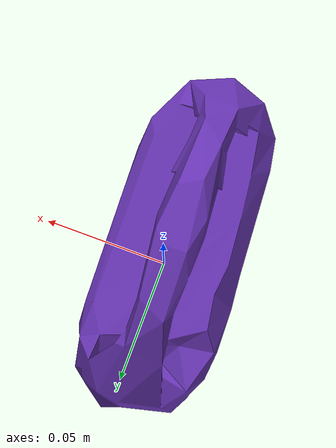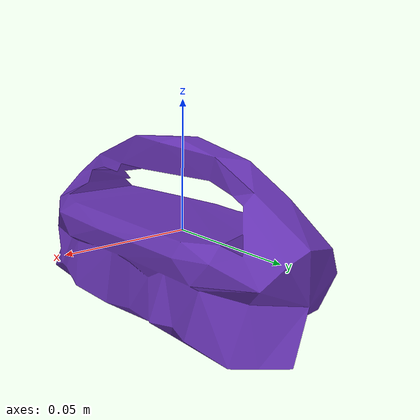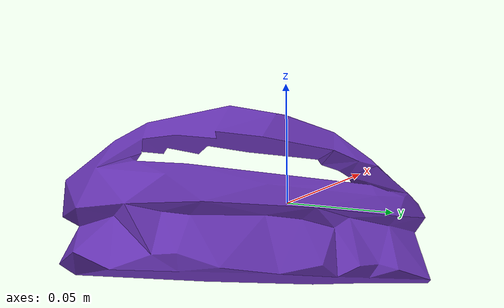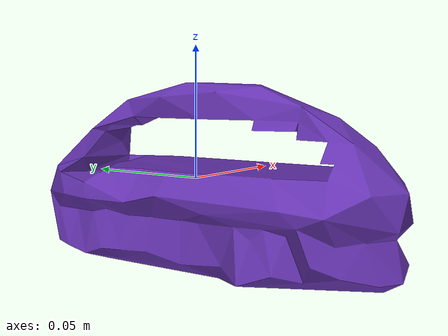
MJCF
<mujoco model="top_watertight_tiny">

  <asset>
    <mesh file="top_watertight_tiny.obj"/>
    <mesh file="top_watertight_tiny_collision_0.obj"/>
    <mesh file="top_watertight_tiny_collision_1.obj"/>
    <mesh file="top_watertight_tiny_collision_2.obj"/>
    <mesh file="top_watertight_tiny_collision_3.obj"/>
    <mesh file="top_watertight_tiny_collision_4.obj"/>
    <mesh file="top_watertight_tiny_collision_5.obj"/>
    <mesh file="top_watertight_tiny_collision_6.obj"/>
    <mesh file="top_watertight_tiny_collision_7.obj"/>
    <mesh file="top_watertight_tiny_collision_8.obj"/>
    <mesh file="top_watertight_tiny_collision_9.obj"/>
    <mesh file="top_watertight_tiny_collision_10.obj"/>
    <mesh file="top_watertight_tiny_collision_11.obj"/>
    <mesh file="top_watertight_tiny_collision_12.obj"/>
    <mesh file="top_watertight_tiny_collision_13.obj"/>
    <mesh file="top_watertight_tiny_collision_14.obj"/>
    <mesh file="top_watertight_tiny_collision_15.obj"/>
    <mesh file="top_watertight_tiny_collision_16.obj"/>
    <mesh file="top_watertight_tiny_collision_17.obj"/>
    <mesh file="top_watertight_tiny_collision_18.obj"/>
  </asset>
  <worldbody>
    <body name="top_watertight_tiny">
      <freejoint/>
      <geom solimp="0.90 0.95 0.001" solref="0.02 1.0" density="100" friction="0.95 0.4 0.3" rgba="0.4 0.2 0.7 1" mesh="top_watertight_tiny" group="2" type="mesh" contype="0" conaffinity="0"/>
      <geom solimp="0.90 0.95 0.001" solref="0.02 1.0" density="100" friction="0.95 0.4 0.3" mesh="top_watertight_tiny_collision_0" rgba="0.03740962729754638 0.05248337402433456 0.47842283545971453 1" group="3" type="mesh"/>
      <geom solimp="0.90 0.95 0.001" solref="0.02 1.0" density="100" friction="0.95 0.4 0.3" mesh="top_watertight_tiny_collision_1" rgba="0.13917934833612433 0.8585352591184292 0.6107788346347979 1" group="3" type="mesh"/>
      <geom solimp="0.90 0.95 0.001" solref="0.02 1.0" density="100" friction="0.95 0.4 0.3" mesh="top_watertight_tiny_collision_2" rgba="0.18002015250422 0.9401478111688604 0.9017023180823283 1" group="3" type="mesh"/>
      <geom solimp="0.90 0.95 0.001" solref="0.02 1.0" density="100" friction="0.95 0.4 0.3" mesh="top_watertight_tiny_collision_3" rgba="0.09022388454185304 0.6443344018305057 0.49311399080929297 1" group="3" type="mesh"/>
      <geom solimp="0.90 0.95 0.001" solref="0.02 1.0" density="100" friction="0.95 0.4 0.3" mesh="top_watertight_tiny_collision_4" rgba="0.019841980926479486 0.20202071153200418 0.02593252648267297 1" group="3" type="mesh"/>
      <geom solimp="0.90 0.95 0.001" solref="0.02 1.0" density="100" friction="0.95 0.4 0.3" mesh="top_watertight_tiny_collision_5" rgba="0.8293898977600798 0.010824008256282602 0.585463912881877 1" group="3" type="mesh"/>
      <geom solimp="0.90 0.95 0.001" solref="0.02 1.0" density="100" friction="0.95 0.4 0.3" mesh="top_watertight_tiny_collision_6" rgba="0.06301387756968568 0.4687750745092546 0.5728509791481153 1" group="3" type="mesh"/>
      <geom solimp="0.90 0.95 0.001" solref="0.02 1.0" density="100" friction="0.95 0.4 0.3" mesh="top_watertight_tiny_collision_7" rgba="0.642605337961384 0.44669220388916275 0.2356431287820464 1" group="3" type="mesh"/>
      <geom solimp="0.90 0.95 0.001" solref="0.02 1.0" density="100" friction="0.95 0.4 0.3" mesh="top_watertight_tiny_collision_8" rgba="0.9876341202204842 0.7204807826317055 0.37161368302589504 1" group="3" type="mesh"/>
      <geom solimp="0.90 0.95 0.001" solref="0.02 1.0" density="100" friction="0.95 0.4 0.3" mesh="top_watertight_tiny_collision_9" rgba="0.4319673236168613 0.8262685115049558 0.27335643970032864 1" group="3" type="mesh"/>
      <geom solimp="0.90 0.95 0.001" solref="0.02 1.0" density="100" friction="0.95 0.4 0.3" mesh="top_watertight_tiny_collision_10" rgba="0.5883371377191144 0.6774581138558675 0.584254387235365 1" group="3" type="mesh"/>
      <geom solimp="0.90 0.95 0.001" solref="0.02 1.0" density="100" friction="0.95 0.4 0.3" mesh="top_watertight_tiny_collision_11" rgba="0.08492974830549627 0.12042157938725695 0.1825107360662961 1" group="3" type="mesh"/>
      <geom solimp="0.90 0.95 0.001" solref="0.02 1.0" density="100" friction="0.95 0.4 0.3" mesh="top_watertight_tiny_collision_12" rgba="0.43537132240985477 0.5138171761143481 0.9340667699659709 1" group="3" type="mesh"/>
      <geom solimp="0.90 0.95 0.001" solref="0.02 1.0" density="100" friction="0.95 0.4 0.3" mesh="top_watertight_tiny_collision_13" rgba="0.05215921722114769 0.6732649982767893 0.8544090683379039 1" group="3" type="mesh"/>
      <geom solimp="0.90 0.95 0.001" solref="0.02 1.0" density="100" friction="0.95 0.4 0.3" mesh="top_watertight_tiny_collision_14" rgba="0.8784314404125583 0.6036692429830071 0.5681784407023555 1" group="3" type="mesh"/>
      <geom solimp="0.90 0.95 0.001" solref="0.02 1.0" density="100" friction="0.95 0.4 0.3" mesh="top_watertight_tiny_collision_15" rgba="0.30549568919632497 0.9527134905383242 0.7615714836357882 1" group="3" type="mesh"/>
      <geom solimp="0.90 0.95 0.001" solref="0.02 1.0" density="100" friction="0.95 0.4 0.3" mesh="top_watertight_tiny_collision_16" rgba="0.7621347498160502 0.4422654452721907 0.7907453980879482 1" group="3" type="mesh"/>
      <geom solimp="0.90 0.95 0.001" solref="0.02 1.0" density="100" friction="0.95 0.4 0.3" mesh="top_watertight_tiny_collision_17" rgba="0.06373513295279665 0.45278005960600287 0.3139602278627064 1" group="3" type="mesh"/>
      <geom solimp="0.90 0.95 0.001" solref="0.02 1.0" density="100" friction="0.95 0.4 0.3" mesh="top_watertight_tiny_collision_18" rgba="0.846385590193029 0.11640705590345157 0.16357587529360973 1" group="3" type="mesh"/>
    </body>
  </worldbody>
</mujoco>
